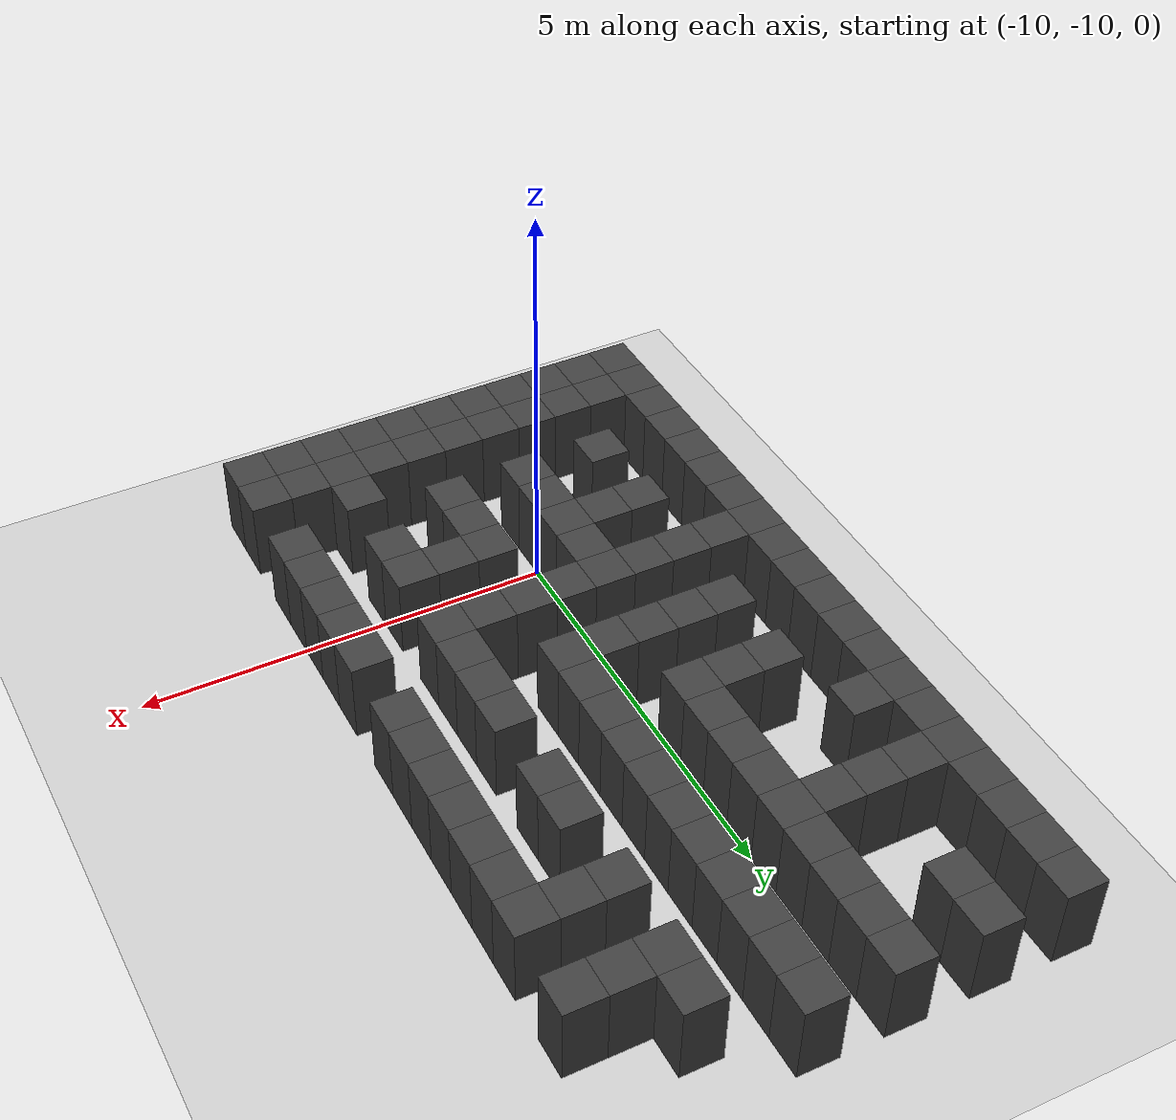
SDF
<sdf version="1.7">
 <world name="map_18332">
  <model name="ground_plane">
   <static>true</static>
   <link name="link">
    <collision name="collision">
     <geometry><plane><normal>0 0 1</normal><size>200 200</size></plane></geometry>
    </collision>
    <visual name="visual">
     <geometry><plane><normal>0 0 1</normal><size>200 200</size></plane></geometry>
     <material><ambient>0.8 0.8 0.8 1</ambient><diffuse>0.8 0.8 0.8 1</diffuse></material>
    </visual>
   </link>
  </model>
  <model name="maze_environment">
   <static>true</static>
   <link name="wall_757">
    <pose>-12.250 -2.750 0.500 0 0 0</pose>
    <collision name="col"><geometry><box><size>0.5 0.5 1.0</size></box></geometry></collision>
    <visual name="vis">
     <geometry><box><size>0.5 0.5 1.0</size></box></geometry>
     <material><ambient>0.15 0.15 0.15 1</ambient><diffuse>0.25 0.25 0.25 1</diffuse></material>
    </visual>
   </link>
   <link name="wall_758">
    <pose>-11.250 -2.750 0.500 0 0 0</pose>
    <collision name="col"><geometry><box><size>0.5 0.5 1.0</size></box></geometry></collision>
    <visual name="vis">
     <geometry><box><size>0.5 0.5 1.0</size></box></geometry>
     <material><ambient>0.15 0.15 0.15 1</ambient><diffuse>0.25 0.25 0.25 1</diffuse></material>
    </visual>
   </link>
   <link name="wall_759">
    <pose>-10.250 -2.750 0.500 0 0 0</pose>
    <collision name="col"><geometry><box><size>0.5 0.5 1.0</size></box></geometry></collision>
    <visual name="vis">
     <geometry><box><size>0.5 0.5 1.0</size></box></geometry>
     <material><ambient>0.15 0.15 0.15 1</ambient><diffuse>0.25 0.25 0.25 1</diffuse></material>
    </visual>
   </link>
   <link name="wall_760">
    <pose>-9.250 -2.750 0.500 0 0 0</pose>
    <collision name="col"><geometry><box><size>0.5 0.5 1.0</size></box></geometry></collision>
    <visual name="vis">
     <geometry><box><size>0.5 0.5 1.0</size></box></geometry>
     <material><ambient>0.15 0.15 0.15 1</ambient><diffuse>0.25 0.25 0.25 1</diffuse></material>
    </visual>
   </link>
   <link name="wall_791">
    <pose>-12.250 -3.250 0.500 0 0 0</pose>
    <collision name="col"><geometry><box><size>0.5 0.5 1.0</size></box></geometry></collision>
    <visual name="vis">
     <geometry><box><size>0.5 0.5 1.0</size></box></geometry>
     <material><ambient>0.15 0.15 0.15 1</ambient><diffuse>0.25 0.25 0.25 1</diffuse></material>
    </visual>
   </link>
   <link name="wall_792">
    <pose>-11.250 -3.250 0.500 0 0 0</pose>
    <collision name="col"><geometry><box><size>0.5 0.5 1.0</size></box></geometry></collision>
    <visual name="vis">
     <geometry><box><size>0.5 0.5 1.0</size></box></geometry>
     <material><ambient>0.15 0.15 0.15 1</ambient><diffuse>0.25 0.25 0.25 1</diffuse></material>
    </visual>
   </link>
   <link name="wall_793">
    <pose>-10.250 -3.250 0.500 0 0 0</pose>
    <collision name="col"><geometry><box><size>0.5 0.5 1.0</size></box></geometry></collision>
    <visual name="vis">
     <geometry><box><size>0.5 0.5 1.0</size></box></geometry>
     <material><ambient>0.15 0.15 0.15 1</ambient><diffuse>0.25 0.25 0.25 1</diffuse></material>
    </visual>
   </link>
   <link name="wall_794">
    <pose>-9.250 -3.250 0.500 0 0 0</pose>
    <collision name="col"><geometry><box><size>0.5 0.5 1.0</size></box></geometry></collision>
    <visual name="vis">
     <geometry><box><size>0.5 0.5 1.0</size></box></geometry>
     <material><ambient>0.15 0.15 0.15 1</ambient><diffuse>0.25 0.25 0.25 1</diffuse></material>
    </visual>
   </link>
   <link name="wall_795">
    <pose>-8.250 -3.250 0.500 0 0 0</pose>
    <collision name="col"><geometry><box><size>0.5 0.5 1.0</size></box></geometry></collision>
    <visual name="vis">
     <geometry><box><size>0.5 0.5 1.0</size></box></geometry>
     <material><ambient>0.15 0.15 0.15 1</ambient><diffuse>0.25 0.25 0.25 1</diffuse></material>
    </visual>
   </link>
   <link name="wall_808">
    <pose>-12.250 -3.750 0.500 0 0 0</pose>
    <collision name="col"><geometry><box><size>0.5 0.5 1.0</size></box></geometry></collision>
    <visual name="vis">
     <geometry><box><size>0.5 0.5 1.0</size></box></geometry>
     <material><ambient>0.15 0.15 0.15 1</ambient><diffuse>0.25 0.25 0.25 1</diffuse></material>
    </visual>
   </link>
   <link name="wall_809">
    <pose>-10.250 -3.750 0.500 0 0 0</pose>
    <collision name="col"><geometry><box><size>0.5 0.5 1.0</size></box></geometry></collision>
    <visual name="vis">
     <geometry><box><size>0.5 0.5 1.0</size></box></geometry>
     <material><ambient>0.15 0.15 0.15 1</ambient><diffuse>0.25 0.25 0.25 1</diffuse></material>
    </visual>
   </link>
   <link name="wall_810">
    <pose>-9.250 -3.750 0.500 0 0 0</pose>
    <collision name="col"><geometry><box><size>0.5 0.5 1.0</size></box></geometry></collision>
    <visual name="vis">
     <geometry><box><size>0.5 0.5 1.0</size></box></geometry>
     <material><ambient>0.15 0.15 0.15 1</ambient><diffuse>0.25 0.25 0.25 1</diffuse></material>
    </visual>
   </link>
   <link name="wall_811">
    <pose>-8.250 -3.750 0.500 0 0 0</pose>
    <collision name="col"><geometry><box><size>0.5 0.5 1.0</size></box></geometry></collision>
    <visual name="vis">
     <geometry><box><size>0.5 0.5 1.0</size></box></geometry>
     <material><ambient>0.15 0.15 0.15 1</ambient><diffuse>0.25 0.25 0.25 1</diffuse></material>
    </visual>
   </link>
   <link name="wall_812">
    <pose>-7.750 -3.750 0.500 0 0 0</pose>
    <collision name="col"><geometry><box><size>0.5 0.5 1.0</size></box></geometry></collision>
    <visual name="vis">
     <geometry><box><size>0.5 0.5 1.0</size></box></geometry>
     <material><ambient>0.15 0.15 0.15 1</ambient><diffuse>0.25 0.25 0.25 1</diffuse></material>
    </visual>
   </link>
   <link name="wall_813">
    <pose>-7.250 -3.750 0.500 0 0 0</pose>
    <collision name="col"><geometry><box><size>0.5 0.5 1.0</size></box></geometry></collision>
    <visual name="vis">
     <geometry><box><size>0.5 0.5 1.0</size></box></geometry>
     <material><ambient>0.15 0.15 0.15 1</ambient><diffuse>0.25 0.25 0.25 1</diffuse></material>
    </visual>
   </link>
   <link name="wall_841">
    <pose>-12.250 -4.250 0.500 0 0 0</pose>
    <collision name="col"><geometry><box><size>0.5 0.5 1.0</size></box></geometry></collision>
    <visual name="vis">
     <geometry><box><size>0.5 0.5 1.0</size></box></geometry>
     <material><ambient>0.15 0.15 0.15 1</ambient><diffuse>0.25 0.25 0.25 1</diffuse></material>
    </visual>
   </link>
   <link name="wall_842">
    <pose>-10.250 -4.250 0.500 0 0 0</pose>
    <collision name="col"><geometry><box><size>0.5 0.5 1.0</size></box></geometry></collision>
    <visual name="vis">
     <geometry><box><size>0.5 0.5 1.0</size></box></geometry>
     <material><ambient>0.15 0.15 0.15 1</ambient><diffuse>0.25 0.25 0.25 1</diffuse></material>
    </visual>
   </link>
   <link name="wall_843">
    <pose>-9.250 -4.250 0.500 0 0 0</pose>
    <collision name="col"><geometry><box><size>0.5 0.5 1.0</size></box></geometry></collision>
    <visual name="vis">
     <geometry><box><size>0.5 0.5 1.0</size></box></geometry>
     <material><ambient>0.15 0.15 0.15 1</ambient><diffuse>0.25 0.25 0.25 1</diffuse></material>
    </visual>
   </link>
   <link name="wall_856">
    <pose>-12.250 -4.750 0.500 0 0 0</pose>
    <collision name="col"><geometry><box><size>0.5 0.5 1.0</size></box></geometry></collision>
    <visual name="vis">
     <geometry><box><size>0.5 0.5 1.0</size></box></geometry>
     <material><ambient>0.15 0.15 0.15 1</ambient><diffuse>0.25 0.25 0.25 1</diffuse></material>
    </visual>
   </link>
   <link name="wall_857">
    <pose>-11.750 -4.750 0.500 0 0 0</pose>
    <collision name="col"><geometry><box><size>0.5 0.5 1.0</size></box></geometry></collision>
    <visual name="vis">
     <geometry><box><size>0.5 0.5 1.0</size></box></geometry>
     <material><ambient>0.15 0.15 0.15 1</ambient><diffuse>0.25 0.25 0.25 1</diffuse></material>
    </visual>
   </link>
   <link name="wall_858">
    <pose>-11.250 -4.750 0.500 0 0 0</pose>
    <collision name="col"><geometry><box><size>0.5 0.5 1.0</size></box></geometry></collision>
    <visual name="vis">
     <geometry><box><size>0.5 0.5 1.0</size></box></geometry>
     <material><ambient>0.15 0.15 0.15 1</ambient><diffuse>0.25 0.25 0.25 1</diffuse></material>
    </visual>
   </link>
   <link name="wall_859">
    <pose>-10.750 -4.750 0.500 0 0 0</pose>
    <collision name="col"><geometry><box><size>0.5 0.5 1.0</size></box></geometry></collision>
    <visual name="vis">
     <geometry><box><size>0.5 0.5 1.0</size></box></geometry>
     <material><ambient>0.15 0.15 0.15 1</ambient><diffuse>0.25 0.25 0.25 1</diffuse></material>
    </visual>
   </link>
   <link name="wall_860">
    <pose>-10.250 -4.750 0.500 0 0 0</pose>
    <collision name="col"><geometry><box><size>0.5 0.5 1.0</size></box></geometry></collision>
    <visual name="vis">
     <geometry><box><size>0.5 0.5 1.0</size></box></geometry>
     <material><ambient>0.15 0.15 0.15 1</ambient><diffuse>0.25 0.25 0.25 1</diffuse></material>
    </visual>
   </link>
   <link name="wall_861">
    <pose>-9.250 -4.750 0.500 0 0 0</pose>
    <collision name="col"><geometry><box><size>0.5 0.5 1.0</size></box></geometry></collision>
    <visual name="vis">
     <geometry><box><size>0.5 0.5 1.0</size></box></geometry>
     <material><ambient>0.15 0.15 0.15 1</ambient><diffuse>0.25 0.25 0.25 1</diffuse></material>
    </visual>
   </link>
   <link name="wall_862">
    <pose>-8.250 -4.750 0.500 0 0 0</pose>
    <collision name="col"><geometry><box><size>0.5 0.5 1.0</size></box></geometry></collision>
    <visual name="vis">
     <geometry><box><size>0.5 0.5 1.0</size></box></geometry>
     <material><ambient>0.15 0.15 0.15 1</ambient><diffuse>0.25 0.25 0.25 1</diffuse></material>
    </visual>
   </link>
   <link name="wall_863">
    <pose>-7.750 -4.750 0.500 0 0 0</pose>
    <collision name="col"><geometry><box><size>0.5 0.5 1.0</size></box></geometry></collision>
    <visual name="vis">
     <geometry><box><size>0.5 0.5 1.0</size></box></geometry>
     <material><ambient>0.15 0.15 0.15 1</ambient><diffuse>0.25 0.25 0.25 1</diffuse></material>
    </visual>
   </link>
   <link name="wall_864">
    <pose>-7.250 -4.750 0.500 0 0 0</pose>
    <collision name="col"><geometry><box><size>0.5 0.5 1.0</size></box></geometry></collision>
    <visual name="vis">
     <geometry><box><size>0.5 0.5 1.0</size></box></geometry>
     <material><ambient>0.15 0.15 0.15 1</ambient><diffuse>0.25 0.25 0.25 1</diffuse></material>
    </visual>
   </link>
   <link name="wall_890">
    <pose>-12.250 -5.250 0.500 0 0 0</pose>
    <collision name="col"><geometry><box><size>0.5 0.5 1.0</size></box></geometry></collision>
    <visual name="vis">
     <geometry><box><size>0.5 0.5 1.0</size></box></geometry>
     <material><ambient>0.15 0.15 0.15 1</ambient><diffuse>0.25 0.25 0.25 1</diffuse></material>
    </visual>
   </link>
   <link name="wall_891">
    <pose>-10.250 -5.250 0.500 0 0 0</pose>
    <collision name="col"><geometry><box><size>0.5 0.5 1.0</size></box></geometry></collision>
    <visual name="vis">
     <geometry><box><size>0.5 0.5 1.0</size></box></geometry>
     <material><ambient>0.15 0.15 0.15 1</ambient><diffuse>0.25 0.25 0.25 1</diffuse></material>
    </visual>
   </link>
   <link name="wall_892">
    <pose>-9.250 -5.250 0.500 0 0 0</pose>
    <collision name="col"><geometry><box><size>0.5 0.5 1.0</size></box></geometry></collision>
    <visual name="vis">
     <geometry><box><size>0.5 0.5 1.0</size></box></geometry>
     <material><ambient>0.15 0.15 0.15 1</ambient><diffuse>0.25 0.25 0.25 1</diffuse></material>
    </visual>
   </link>
   <link name="wall_893">
    <pose>-7.250 -5.250 0.500 0 0 0</pose>
    <collision name="col"><geometry><box><size>0.5 0.5 1.0</size></box></geometry></collision>
    <visual name="vis">
     <geometry><box><size>0.5 0.5 1.0</size></box></geometry>
     <material><ambient>0.15 0.15 0.15 1</ambient><diffuse>0.25 0.25 0.25 1</diffuse></material>
    </visual>
   </link>
   <link name="wall_905">
    <pose>-12.250 -5.750 0.500 0 0 0</pose>
    <collision name="col"><geometry><box><size>0.5 0.5 1.0</size></box></geometry></collision>
    <visual name="vis">
     <geometry><box><size>0.5 0.5 1.0</size></box></geometry>
     <material><ambient>0.15 0.15 0.15 1</ambient><diffuse>0.25 0.25 0.25 1</diffuse></material>
    </visual>
   </link>
   <link name="wall_906">
    <pose>-11.750 -5.750 0.500 0 0 0</pose>
    <collision name="col"><geometry><box><size>0.5 0.5 1.0</size></box></geometry></collision>
    <visual name="vis">
     <geometry><box><size>0.5 0.5 1.0</size></box></geometry>
     <material><ambient>0.15 0.15 0.15 1</ambient><diffuse>0.25 0.25 0.25 1</diffuse></material>
    </visual>
   </link>
   <link name="wall_907">
    <pose>-10.250 -5.750 0.500 0 0 0</pose>
    <collision name="col"><geometry><box><size>0.5 0.5 1.0</size></box></geometry></collision>
    <visual name="vis">
     <geometry><box><size>0.5 0.5 1.0</size></box></geometry>
     <material><ambient>0.15 0.15 0.15 1</ambient><diffuse>0.25 0.25 0.25 1</diffuse></material>
    </visual>
   </link>
   <link name="wall_908">
    <pose>-9.250 -5.750 0.500 0 0 0</pose>
    <collision name="col"><geometry><box><size>0.5 0.5 1.0</size></box></geometry></collision>
    <visual name="vis">
     <geometry><box><size>0.5 0.5 1.0</size></box></geometry>
     <material><ambient>0.15 0.15 0.15 1</ambient><diffuse>0.25 0.25 0.25 1</diffuse></material>
    </visual>
   </link>
   <link name="wall_909">
    <pose>-8.250 -5.750 0.500 0 0 0</pose>
    <collision name="col"><geometry><box><size>0.5 0.5 1.0</size></box></geometry></collision>
    <visual name="vis">
     <geometry><box><size>0.5 0.5 1.0</size></box></geometry>
     <material><ambient>0.15 0.15 0.15 1</ambient><diffuse>0.25 0.25 0.25 1</diffuse></material>
    </visual>
   </link>
   <link name="wall_910">
    <pose>-7.250 -5.750 0.500 0 0 0</pose>
    <collision name="col"><geometry><box><size>0.5 0.5 1.0</size></box></geometry></collision>
    <visual name="vis">
     <geometry><box><size>0.5 0.5 1.0</size></box></geometry>
     <material><ambient>0.15 0.15 0.15 1</ambient><diffuse>0.25 0.25 0.25 1</diffuse></material>
    </visual>
   </link>
   <link name="wall_941">
    <pose>-12.250 -6.250 0.500 0 0 0</pose>
    <collision name="col"><geometry><box><size>0.5 0.5 1.0</size></box></geometry></collision>
    <visual name="vis">
     <geometry><box><size>0.5 0.5 1.0</size></box></geometry>
     <material><ambient>0.15 0.15 0.15 1</ambient><diffuse>0.25 0.25 0.25 1</diffuse></material>
    </visual>
   </link>
   <link name="wall_942">
    <pose>-10.250 -6.250 0.500 0 0 0</pose>
    <collision name="col"><geometry><box><size>0.5 0.5 1.0</size></box></geometry></collision>
    <visual name="vis">
     <geometry><box><size>0.5 0.5 1.0</size></box></geometry>
     <material><ambient>0.15 0.15 0.15 1</ambient><diffuse>0.25 0.25 0.25 1</diffuse></material>
    </visual>
   </link>
   <link name="wall_943">
    <pose>-9.250 -6.250 0.500 0 0 0</pose>
    <collision name="col"><geometry><box><size>0.5 0.5 1.0</size></box></geometry></collision>
    <visual name="vis">
     <geometry><box><size>0.5 0.5 1.0</size></box></geometry>
     <material><ambient>0.15 0.15 0.15 1</ambient><diffuse>0.25 0.25 0.25 1</diffuse></material>
    </visual>
   </link>
   <link name="wall_944">
    <pose>-8.250 -6.250 0.500 0 0 0</pose>
    <collision name="col"><geometry><box><size>0.5 0.5 1.0</size></box></geometry></collision>
    <visual name="vis">
     <geometry><box><size>0.5 0.5 1.0</size></box></geometry>
     <material><ambient>0.15 0.15 0.15 1</ambient><diffuse>0.25 0.25 0.25 1</diffuse></material>
    </visual>
   </link>
   <link name="wall_945">
    <pose>-7.250 -6.250 0.500 0 0 0</pose>
    <collision name="col"><geometry><box><size>0.5 0.5 1.0</size></box></geometry></collision>
    <visual name="vis">
     <geometry><box><size>0.5 0.5 1.0</size></box></geometry>
     <material><ambient>0.15 0.15 0.15 1</ambient><diffuse>0.25 0.25 0.25 1</diffuse></material>
    </visual>
   </link>
   <link name="wall_955">
    <pose>-12.250 -6.750 0.500 0 0 0</pose>
    <collision name="col"><geometry><box><size>0.5 0.5 1.0</size></box></geometry></collision>
    <visual name="vis">
     <geometry><box><size>0.5 0.5 1.0</size></box></geometry>
     <material><ambient>0.15 0.15 0.15 1</ambient><diffuse>0.25 0.25 0.25 1</diffuse></material>
    </visual>
   </link>
   <link name="wall_956">
    <pose>-11.250 -6.750 0.500 0 0 0</pose>
    <collision name="col"><geometry><box><size>0.5 0.5 1.0</size></box></geometry></collision>
    <visual name="vis">
     <geometry><box><size>0.5 0.5 1.0</size></box></geometry>
     <material><ambient>0.15 0.15 0.15 1</ambient><diffuse>0.25 0.25 0.25 1</diffuse></material>
    </visual>
   </link>
   <link name="wall_957">
    <pose>-10.750 -6.750 0.500 0 0 0</pose>
    <collision name="col"><geometry><box><size>0.5 0.5 1.0</size></box></geometry></collision>
    <visual name="vis">
     <geometry><box><size>0.5 0.5 1.0</size></box></geometry>
     <material><ambient>0.15 0.15 0.15 1</ambient><diffuse>0.25 0.25 0.25 1</diffuse></material>
    </visual>
   </link>
   <link name="wall_958">
    <pose>-10.250 -6.750 0.500 0 0 0</pose>
    <collision name="col"><geometry><box><size>0.5 0.5 1.0</size></box></geometry></collision>
    <visual name="vis">
     <geometry><box><size>0.5 0.5 1.0</size></box></geometry>
     <material><ambient>0.15 0.15 0.15 1</ambient><diffuse>0.25 0.25 0.25 1</diffuse></material>
    </visual>
   </link>
   <link name="wall_959">
    <pose>-9.250 -6.750 0.500 0 0 0</pose>
    <collision name="col"><geometry><box><size>0.5 0.5 1.0</size></box></geometry></collision>
    <visual name="vis">
     <geometry><box><size>0.5 0.5 1.0</size></box></geometry>
     <material><ambient>0.15 0.15 0.15 1</ambient><diffuse>0.25 0.25 0.25 1</diffuse></material>
    </visual>
   </link>
   <link name="wall_960">
    <pose>-7.250 -6.750 0.500 0 0 0</pose>
    <collision name="col"><geometry><box><size>0.5 0.5 1.0</size></box></geometry></collision>
    <visual name="vis">
     <geometry><box><size>0.5 0.5 1.0</size></box></geometry>
     <material><ambient>0.15 0.15 0.15 1</ambient><diffuse>0.25 0.25 0.25 1</diffuse></material>
    </visual>
   </link>
   <link name="wall_991">
    <pose>-12.250 -7.250 0.500 0 0 0</pose>
    <collision name="col"><geometry><box><size>0.5 0.5 1.0</size></box></geometry></collision>
    <visual name="vis">
     <geometry><box><size>0.5 0.5 1.0</size></box></geometry>
     <material><ambient>0.15 0.15 0.15 1</ambient><diffuse>0.25 0.25 0.25 1</diffuse></material>
    </visual>
   </link>
   <link name="wall_992">
    <pose>-9.250 -7.250 0.500 0 0 0</pose>
    <collision name="col"><geometry><box><size>0.5 0.5 1.0</size></box></geometry></collision>
    <visual name="vis">
     <geometry><box><size>0.5 0.5 1.0</size></box></geometry>
     <material><ambient>0.15 0.15 0.15 1</ambient><diffuse>0.25 0.25 0.25 1</diffuse></material>
    </visual>
   </link>
   <link name="wall_993">
    <pose>-8.250 -7.250 0.500 0 0 0</pose>
    <collision name="col"><geometry><box><size>0.5 0.5 1.0</size></box></geometry></collision>
    <visual name="vis">
     <geometry><box><size>0.5 0.5 1.0</size></box></geometry>
     <material><ambient>0.15 0.15 0.15 1</ambient><diffuse>0.25 0.25 0.25 1</diffuse></material>
    </visual>
   </link>
   <link name="wall_994">
    <pose>-7.250 -7.250 0.500 0 0 0</pose>
    <collision name="col"><geometry><box><size>0.5 0.5 1.0</size></box></geometry></collision>
    <visual name="vis">
     <geometry><box><size>0.5 0.5 1.0</size></box></geometry>
     <material><ambient>0.15 0.15 0.15 1</ambient><diffuse>0.25 0.25 0.25 1</diffuse></material>
    </visual>
   </link>
   <link name="wall_1005">
    <pose>-12.250 -7.750 0.500 0 0 0</pose>
    <collision name="col"><geometry><box><size>0.5 0.5 1.0</size></box></geometry></collision>
    <visual name="vis">
     <geometry><box><size>0.5 0.5 1.0</size></box></geometry>
     <material><ambient>0.15 0.15 0.15 1</ambient><diffuse>0.25 0.25 0.25 1</diffuse></material>
    </visual>
   </link>
   <link name="wall_1006">
    <pose>-11.250 -7.750 0.500 0 0 0</pose>
    <collision name="col"><geometry><box><size>0.5 0.5 1.0</size></box></geometry></collision>
    <visual name="vis">
     <geometry><box><size>0.5 0.5 1.0</size></box></geometry>
     <material><ambient>0.15 0.15 0.15 1</ambient><diffuse>0.25 0.25 0.25 1</diffuse></material>
    </visual>
   </link>
   <link name="wall_1007">
    <pose>-10.750 -7.750 0.500 0 0 0</pose>
    <collision name="col"><geometry><box><size>0.5 0.5 1.0</size></box></geometry></collision>
    <visual name="vis">
     <geometry><box><size>0.5 0.5 1.0</size></box></geometry>
     <material><ambient>0.15 0.15 0.15 1</ambient><diffuse>0.25 0.25 0.25 1</diffuse></material>
    </visual>
   </link>
   <link name="wall_1008">
    <pose>-10.250 -7.750 0.500 0 0 0</pose>
    <collision name="col"><geometry><box><size>0.5 0.5 1.0</size></box></geometry></collision>
    <visual name="vis">
     <geometry><box><size>0.5 0.5 1.0</size></box></geometry>
     <material><ambient>0.15 0.15 0.15 1</ambient><diffuse>0.25 0.25 0.25 1</diffuse></material>
    </visual>
   </link>
   <link name="wall_1009">
    <pose>-9.750 -7.750 0.500 0 0 0</pose>
    <collision name="col"><geometry><box><size>0.5 0.5 1.0</size></box></geometry></collision>
    <visual name="vis">
     <geometry><box><size>0.5 0.5 1.0</size></box></geometry>
     <material><ambient>0.15 0.15 0.15 1</ambient><diffuse>0.25 0.25 0.25 1</diffuse></material>
    </visual>
   </link>
   <link name="wall_1010">
    <pose>-9.250 -7.750 0.500 0 0 0</pose>
    <collision name="col"><geometry><box><size>0.5 0.5 1.0</size></box></geometry></collision>
    <visual name="vis">
     <geometry><box><size>0.5 0.5 1.0</size></box></geometry>
     <material><ambient>0.15 0.15 0.15 1</ambient><diffuse>0.25 0.25 0.25 1</diffuse></material>
    </visual>
   </link>
   <link name="wall_1011">
    <pose>-8.250 -7.750 0.500 0 0 0</pose>
    <collision name="col"><geometry><box><size>0.5 0.5 1.0</size></box></geometry></collision>
    <visual name="vis">
     <geometry><box><size>0.5 0.5 1.0</size></box></geometry>
     <material><ambient>0.15 0.15 0.15 1</ambient><diffuse>0.25 0.25 0.25 1</diffuse></material>
    </visual>
   </link>
   <link name="wall_1012">
    <pose>-7.250 -7.750 0.500 0 0 0</pose>
    <collision name="col"><geometry><box><size>0.5 0.5 1.0</size></box></geometry></collision>
    <visual name="vis">
     <geometry><box><size>0.5 0.5 1.0</size></box></geometry>
     <material><ambient>0.15 0.15 0.15 1</ambient><diffuse>0.25 0.25 0.25 1</diffuse></material>
    </visual>
   </link>
   <link name="wall_1037">
    <pose>-12.250 -8.250 0.500 0 0 0</pose>
    <collision name="col"><geometry><box><size>0.5 0.5 1.0</size></box></geometry></collision>
    <visual name="vis">
     <geometry><box><size>0.5 0.5 1.0</size></box></geometry>
     <material><ambient>0.15 0.15 0.15 1</ambient><diffuse>0.25 0.25 0.25 1</diffuse></material>
    </visual>
   </link>
   <link name="wall_1038">
    <pose>-8.250 -8.250 0.500 0 0 0</pose>
    <collision name="col"><geometry><box><size>0.5 0.5 1.0</size></box></geometry></collision>
    <visual name="vis">
     <geometry><box><size>0.5 0.5 1.0</size></box></geometry>
     <material><ambient>0.15 0.15 0.15 1</ambient><diffuse>0.25 0.25 0.25 1</diffuse></material>
    </visual>
   </link>
   <link name="wall_1053">
    <pose>-12.250 -8.750 0.500 0 0 0</pose>
    <collision name="col"><geometry><box><size>0.5 0.5 1.0</size></box></geometry></collision>
    <visual name="vis">
     <geometry><box><size>0.5 0.5 1.0</size></box></geometry>
     <material><ambient>0.15 0.15 0.15 1</ambient><diffuse>0.25 0.25 0.25 1</diffuse></material>
    </visual>
   </link>
   <link name="wall_1054">
    <pose>-11.750 -8.750 0.500 0 0 0</pose>
    <collision name="col"><geometry><box><size>0.5 0.5 1.0</size></box></geometry></collision>
    <visual name="vis">
     <geometry><box><size>0.5 0.5 1.0</size></box></geometry>
     <material><ambient>0.15 0.15 0.15 1</ambient><diffuse>0.25 0.25 0.25 1</diffuse></material>
    </visual>
   </link>
   <link name="wall_1055">
    <pose>-11.250 -8.750 0.500 0 0 0</pose>
    <collision name="col"><geometry><box><size>0.5 0.5 1.0</size></box></geometry></collision>
    <visual name="vis">
     <geometry><box><size>0.5 0.5 1.0</size></box></geometry>
     <material><ambient>0.15 0.15 0.15 1</ambient><diffuse>0.25 0.25 0.25 1</diffuse></material>
    </visual>
   </link>
   <link name="wall_1056">
    <pose>-10.750 -8.750 0.500 0 0 0</pose>
    <collision name="col"><geometry><box><size>0.5 0.5 1.0</size></box></geometry></collision>
    <visual name="vis">
     <geometry><box><size>0.5 0.5 1.0</size></box></geometry>
     <material><ambient>0.15 0.15 0.15 1</ambient><diffuse>0.25 0.25 0.25 1</diffuse></material>
    </visual>
   </link>
   <link name="wall_1057">
    <pose>-10.250 -8.750 0.500 0 0 0</pose>
    <collision name="col"><geometry><box><size>0.5 0.5 1.0</size></box></geometry></collision>
    <visual name="vis">
     <geometry><box><size>0.5 0.5 1.0</size></box></geometry>
     <material><ambient>0.15 0.15 0.15 1</ambient><diffuse>0.25 0.25 0.25 1</diffuse></material>
    </visual>
   </link>
   <link name="wall_1058">
    <pose>-9.750 -8.750 0.500 0 0 0</pose>
    <collision name="col"><geometry><box><size>0.5 0.5 1.0</size></box></geometry></collision>
    <visual name="vis">
     <geometry><box><size>0.5 0.5 1.0</size></box></geometry>
     <material><ambient>0.15 0.15 0.15 1</ambient><diffuse>0.25 0.25 0.25 1</diffuse></material>
    </visual>
   </link>
   <link name="wall_1059">
    <pose>-9.250 -8.750 0.500 0 0 0</pose>
    <collision name="col"><geometry><box><size>0.5 0.5 1.0</size></box></geometry></collision>
    <visual name="vis">
     <geometry><box><size>0.5 0.5 1.0</size></box></geometry>
     <material><ambient>0.15 0.15 0.15 1</ambient><diffuse>0.25 0.25 0.25 1</diffuse></material>
    </visual>
   </link>
   <link name="wall_1060">
    <pose>-8.750 -8.750 0.500 0 0 0</pose>
    <collision name="col"><geometry><box><size>0.5 0.5 1.0</size></box></geometry></collision>
    <visual name="vis">
     <geometry><box><size>0.5 0.5 1.0</size></box></geometry>
     <material><ambient>0.15 0.15 0.15 1</ambient><diffuse>0.25 0.25 0.25 1</diffuse></material>
    </visual>
   </link>
   <link name="wall_1061">
    <pose>-8.250 -8.750 0.500 0 0 0</pose>
    <collision name="col"><geometry><box><size>0.5 0.5 1.0</size></box></geometry></collision>
    <visual name="vis">
     <geometry><box><size>0.5 0.5 1.0</size></box></geometry>
     <material><ambient>0.15 0.15 0.15 1</ambient><diffuse>0.25 0.25 0.25 1</diffuse></material>
    </visual>
   </link>
   <link name="wall_1062">
    <pose>-7.250 -8.750 0.500 0 0 0</pose>
    <collision name="col"><geometry><box><size>0.5 0.5 1.0</size></box></geometry></collision>
    <visual name="vis">
     <geometry><box><size>0.5 0.5 1.0</size></box></geometry>
     <material><ambient>0.15 0.15 0.15 1</ambient><diffuse>0.25 0.25 0.25 1</diffuse></material>
    </visual>
   </link>
   <link name="wall_1090">
    <pose>-12.250 -9.250 0.500 0 0 0</pose>
    <collision name="col"><geometry><box><size>0.5 0.5 1.0</size></box></geometry></collision>
    <visual name="vis">
     <geometry><box><size>0.5 0.5 1.0</size></box></geometry>
     <material><ambient>0.15 0.15 0.15 1</ambient><diffuse>0.25 0.25 0.25 1</diffuse></material>
    </visual>
   </link>
   <link name="wall_1091">
    <pose>-10.250 -9.250 0.500 0 0 0</pose>
    <collision name="col"><geometry><box><size>0.5 0.5 1.0</size></box></geometry></collision>
    <visual name="vis">
     <geometry><box><size>0.5 0.5 1.0</size></box></geometry>
     <material><ambient>0.15 0.15 0.15 1</ambient><diffuse>0.25 0.25 0.25 1</diffuse></material>
    </visual>
   </link>
   <link name="wall_1092">
    <pose>-7.250 -9.250 0.500 0 0 0</pose>
    <collision name="col"><geometry><box><size>0.5 0.5 1.0</size></box></geometry></collision>
    <visual name="vis">
     <geometry><box><size>0.5 0.5 1.0</size></box></geometry>
     <material><ambient>0.15 0.15 0.15 1</ambient><diffuse>0.25 0.25 0.25 1</diffuse></material>
    </visual>
   </link>
   <link name="wall_1105">
    <pose>-12.250 -9.750 0.500 0 0 0</pose>
    <collision name="col"><geometry><box><size>0.5 0.5 1.0</size></box></geometry></collision>
    <visual name="vis">
     <geometry><box><size>0.5 0.5 1.0</size></box></geometry>
     <material><ambient>0.15 0.15 0.15 1</ambient><diffuse>0.25 0.25 0.25 1</diffuse></material>
    </visual>
   </link>
   <link name="wall_1106">
    <pose>-11.250 -9.750 0.500 0 0 0</pose>
    <collision name="col"><geometry><box><size>0.5 0.5 1.0</size></box></geometry></collision>
    <visual name="vis">
     <geometry><box><size>0.5 0.5 1.0</size></box></geometry>
     <material><ambient>0.15 0.15 0.15 1</ambient><diffuse>0.25 0.25 0.25 1</diffuse></material>
    </visual>
   </link>
   <link name="wall_1107">
    <pose>-10.750 -9.750 0.500 0 0 0</pose>
    <collision name="col"><geometry><box><size>0.5 0.5 1.0</size></box></geometry></collision>
    <visual name="vis">
     <geometry><box><size>0.5 0.5 1.0</size></box></geometry>
     <material><ambient>0.15 0.15 0.15 1</ambient><diffuse>0.25 0.25 0.25 1</diffuse></material>
    </visual>
   </link>
   <link name="wall_1108">
    <pose>-10.250 -9.750 0.500 0 0 0</pose>
    <collision name="col"><geometry><box><size>0.5 0.5 1.0</size></box></geometry></collision>
    <visual name="vis">
     <geometry><box><size>0.5 0.5 1.0</size></box></geometry>
     <material><ambient>0.15 0.15 0.15 1</ambient><diffuse>0.25 0.25 0.25 1</diffuse></material>
    </visual>
   </link>
   <link name="wall_1109">
    <pose>-9.250 -9.750 0.500 0 0 0</pose>
    <collision name="col"><geometry><box><size>0.5 0.5 1.0</size></box></geometry></collision>
    <visual name="vis">
     <geometry><box><size>0.5 0.5 1.0</size></box></geometry>
     <material><ambient>0.15 0.15 0.15 1</ambient><diffuse>0.25 0.25 0.25 1</diffuse></material>
    </visual>
   </link>
   <link name="wall_1110">
    <pose>-8.750 -9.750 0.500 0 0 0</pose>
    <collision name="col"><geometry><box><size>0.5 0.5 1.0</size></box></geometry></collision>
    <visual name="vis">
     <geometry><box><size>0.5 0.5 1.0</size></box></geometry>
     <material><ambient>0.15 0.15 0.15 1</ambient><diffuse>0.25 0.25 0.25 1</diffuse></material>
    </visual>
   </link>
   <link name="wall_1111">
    <pose>-8.250 -9.750 0.500 0 0 0</pose>
    <collision name="col"><geometry><box><size>0.5 0.5 1.0</size></box></geometry></collision>
    <visual name="vis">
     <geometry><box><size>0.5 0.5 1.0</size></box></geometry>
     <material><ambient>0.15 0.15 0.15 1</ambient><diffuse>0.25 0.25 0.25 1</diffuse></material>
    </visual>
   </link>
   <link name="wall_1112">
    <pose>-7.250 -9.750 0.500 0 0 0</pose>
    <collision name="col"><geometry><box><size>0.5 0.5 1.0</size></box></geometry></collision>
    <visual name="vis">
     <geometry><box><size>0.5 0.5 1.0</size></box></geometry>
     <material><ambient>0.15 0.15 0.15 1</ambient><diffuse>0.25 0.25 0.25 1</diffuse></material>
    </visual>
   </link>
   <link name="wall_1142">
    <pose>-12.250 -10.250 0.500 0 0 0</pose>
    <collision name="col"><geometry><box><size>0.5 0.5 1.0</size></box></geometry></collision>
    <visual name="vis">
     <geometry><box><size>0.5 0.5 1.0</size></box></geometry>
     <material><ambient>0.15 0.15 0.15 1</ambient><diffuse>0.25 0.25 0.25 1</diffuse></material>
    </visual>
   </link>
   <link name="wall_1143">
    <pose>-10.250 -10.250 0.500 0 0 0</pose>
    <collision name="col"><geometry><box><size>0.5 0.5 1.0</size></box></geometry></collision>
    <visual name="vis">
     <geometry><box><size>0.5 0.5 1.0</size></box></geometry>
     <material><ambient>0.15 0.15 0.15 1</ambient><diffuse>0.25 0.25 0.25 1</diffuse></material>
    </visual>
   </link>
   <link name="wall_1144">
    <pose>-9.250 -10.250 0.500 0 0 0</pose>
    <collision name="col"><geometry><box><size>0.5 0.5 1.0</size></box></geometry></collision>
    <visual name="vis">
     <geometry><box><size>0.5 0.5 1.0</size></box></geometry>
     <material><ambient>0.15 0.15 0.15 1</ambient><diffuse>0.25 0.25 0.25 1</diffuse></material>
    </visual>
   </link>
   <link name="wall_1145">
    <pose>-8.250 -10.250 0.500 0 0 0</pose>
    <collision name="col"><geometry><box><size>0.5 0.5 1.0</size></box></geometry></collision>
    <visual name="vis">
     <geometry><box><size>0.5 0.5 1.0</size></box></geometry>
     <material><ambient>0.15 0.15 0.15 1</ambient><diffuse>0.25 0.25 0.25 1</diffuse></material>
    </visual>
   </link>
   <link name="wall_1146">
    <pose>-7.250 -10.250 0.500 0 0 0</pose>
    <collision name="col"><geometry><box><size>0.5 0.5 1.0</size></box></geometry></collision>
    <visual name="vis">
     <geometry><box><size>0.5 0.5 1.0</size></box></geometry>
     <material><ambient>0.15 0.15 0.15 1</ambient><diffuse>0.25 0.25 0.25 1</diffuse></material>
    </visual>
   </link>
   <link name="wall_1158">
    <pose>-12.250 -10.750 0.500 0 0 0</pose>
    <collision name="col"><geometry><box><size>0.5 0.5 1.0</size></box></geometry></collision>
    <visual name="vis">
     <geometry><box><size>0.5 0.5 1.0</size></box></geometry>
     <material><ambient>0.15 0.15 0.15 1</ambient><diffuse>0.25 0.25 0.25 1</diffuse></material>
    </visual>
   </link>
   <link name="wall_1159">
    <pose>-11.250 -10.750 0.500 0 0 0</pose>
    <collision name="col"><geometry><box><size>0.5 0.5 1.0</size></box></geometry></collision>
    <visual name="vis">
     <geometry><box><size>0.5 0.5 1.0</size></box></geometry>
     <material><ambient>0.15 0.15 0.15 1</ambient><diffuse>0.25 0.25 0.25 1</diffuse></material>
    </visual>
   </link>
   <link name="wall_1160">
    <pose>-10.250 -10.750 0.500 0 0 0</pose>
    <collision name="col"><geometry><box><size>0.5 0.5 1.0</size></box></geometry></collision>
    <visual name="vis">
     <geometry><box><size>0.5 0.5 1.0</size></box></geometry>
     <material><ambient>0.15 0.15 0.15 1</ambient><diffuse>0.25 0.25 0.25 1</diffuse></material>
    </visual>
   </link>
   <link name="wall_1161">
    <pose>-9.250 -10.750 0.500 0 0 0</pose>
    <collision name="col"><geometry><box><size>0.5 0.5 1.0</size></box></geometry></collision>
    <visual name="vis">
     <geometry><box><size>0.5 0.5 1.0</size></box></geometry>
     <material><ambient>0.15 0.15 0.15 1</ambient><diffuse>0.25 0.25 0.25 1</diffuse></material>
    </visual>
   </link>
   <link name="wall_1162">
    <pose>-7.250 -10.750 0.500 0 0 0</pose>
    <collision name="col"><geometry><box><size>0.5 0.5 1.0</size></box></geometry></collision>
    <visual name="vis">
     <geometry><box><size>0.5 0.5 1.0</size></box></geometry>
     <material><ambient>0.15 0.15 0.15 1</ambient><diffuse>0.25 0.25 0.25 1</diffuse></material>
    </visual>
   </link>
   <link name="wall_1189">
    <pose>-12.250 -11.250 0.500 0 0 0</pose>
    <collision name="col"><geometry><box><size>0.5 0.5 1.0</size></box></geometry></collision>
    <visual name="vis">
     <geometry><box><size>0.5 0.5 1.0</size></box></geometry>
     <material><ambient>0.15 0.15 0.15 1</ambient><diffuse>0.25 0.25 0.25 1</diffuse></material>
    </visual>
   </link>
   <link name="wall_1190">
    <pose>-8.250 -11.250 0.500 0 0 0</pose>
    <collision name="col"><geometry><box><size>0.5 0.5 1.0</size></box></geometry></collision>
    <visual name="vis">
     <geometry><box><size>0.5 0.5 1.0</size></box></geometry>
     <material><ambient>0.15 0.15 0.15 1</ambient><diffuse>0.25 0.25 0.25 1</diffuse></material>
    </visual>
   </link>
   <link name="wall_1195">
    <pose>-12.250 -11.750 0.500 0 0 0</pose>
    <collision name="col"><geometry><box><size>0.5 0.5 1.0</size></box></geometry></collision>
    <visual name="vis">
     <geometry><box><size>0.5 0.5 1.0</size></box></geometry>
     <material><ambient>0.15 0.15 0.15 1</ambient><diffuse>0.25 0.25 0.25 1</diffuse></material>
    </visual>
   </link>
   <link name="wall_1196">
    <pose>-11.750 -11.750 0.500 0 0 0</pose>
    <collision name="col"><geometry><box><size>0.5 0.5 1.0</size></box></geometry></collision>
    <visual name="vis">
     <geometry><box><size>0.5 0.5 1.0</size></box></geometry>
     <material><ambient>0.15 0.15 0.15 1</ambient><diffuse>0.25 0.25 0.25 1</diffuse></material>
    </visual>
   </link>
   <link name="wall_1197">
    <pose>-11.250 -11.750 0.500 0 0 0</pose>
    <collision name="col"><geometry><box><size>0.5 0.5 1.0</size></box></geometry></collision>
    <visual name="vis">
     <geometry><box><size>0.5 0.5 1.0</size></box></geometry>
     <material><ambient>0.15 0.15 0.15 1</ambient><diffuse>0.25 0.25 0.25 1</diffuse></material>
    </visual>
   </link>
   <link name="wall_1198">
    <pose>-10.750 -11.750 0.500 0 0 0</pose>
    <collision name="col"><geometry><box><size>0.5 0.5 1.0</size></box></geometry></collision>
    <visual name="vis">
     <geometry><box><size>0.5 0.5 1.0</size></box></geometry>
     <material><ambient>0.15 0.15 0.15 1</ambient><diffuse>0.25 0.25 0.25 1</diffuse></material>
    </visual>
   </link>
   <link name="wall_1199">
    <pose>-10.250 -11.750 0.500 0 0 0</pose>
    <collision name="col"><geometry><box><size>0.5 0.5 1.0</size></box></geometry></collision>
    <visual name="vis">
     <geometry><box><size>0.5 0.5 1.0</size></box></geometry>
     <material><ambient>0.15 0.15 0.15 1</ambient><diffuse>0.25 0.25 0.25 1</diffuse></material>
    </visual>
   </link>
   <link name="wall_1200">
    <pose>-9.750 -11.750 0.500 0 0 0</pose>
    <collision name="col"><geometry><box><size>0.5 0.5 1.0</size></box></geometry></collision>
    <visual name="vis">
     <geometry><box><size>0.5 0.5 1.0</size></box></geometry>
     <material><ambient>0.15 0.15 0.15 1</ambient><diffuse>0.25 0.25 0.25 1</diffuse></material>
    </visual>
   </link>
   <link name="wall_1201">
    <pose>-9.250 -11.750 0.500 0 0 0</pose>
    <collision name="col"><geometry><box><size>0.5 0.5 1.0</size></box></geometry></collision>
    <visual name="vis">
     <geometry><box><size>0.5 0.5 1.0</size></box></geometry>
     <material><ambient>0.15 0.15 0.15 1</ambient><diffuse>0.25 0.25 0.25 1</diffuse></material>
    </visual>
   </link>
   <link name="wall_1202">
    <pose>-8.750 -11.750 0.500 0 0 0</pose>
    <collision name="col"><geometry><box><size>0.5 0.5 1.0</size></box></geometry></collision>
    <visual name="vis">
     <geometry><box><size>0.5 0.5 1.0</size></box></geometry>
     <material><ambient>0.15 0.15 0.15 1</ambient><diffuse>0.25 0.25 0.25 1</diffuse></material>
    </visual>
   </link>
   <link name="wall_1203">
    <pose>-8.250 -11.750 0.500 0 0 0</pose>
    <collision name="col"><geometry><box><size>0.5 0.5 1.0</size></box></geometry></collision>
    <visual name="vis">
     <geometry><box><size>0.5 0.5 1.0</size></box></geometry>
     <material><ambient>0.15 0.15 0.15 1</ambient><diffuse>0.25 0.25 0.25 1</diffuse></material>
    </visual>
   </link>
   <link name="wall_1204">
    <pose>-7.750 -11.750 0.500 0 0 0</pose>
    <collision name="col"><geometry><box><size>0.5 0.5 1.0</size></box></geometry></collision>
    <visual name="vis">
     <geometry><box><size>0.5 0.5 1.0</size></box></geometry>
     <material><ambient>0.15 0.15 0.15 1</ambient><diffuse>0.25 0.25 0.25 1</diffuse></material>
    </visual>
   </link>
   <link name="wall_1205">
    <pose>-7.250 -11.750 0.500 0 0 0</pose>
    <collision name="col"><geometry><box><size>0.5 0.5 1.0</size></box></geometry></collision>
    <visual name="vis">
     <geometry><box><size>0.5 0.5 1.0</size></box></geometry>
     <material><ambient>0.15 0.15 0.15 1</ambient><diffuse>0.25 0.25 0.25 1</diffuse></material>
    </visual>
   </link>
   <link name="wall_1243">
    <pose>-12.250 -12.250 0.500 0 0 0</pose>
    <collision name="col"><geometry><box><size>0.5 0.5 1.0</size></box></geometry></collision>
    <visual name="vis">
     <geometry><box><size>0.5 0.5 1.0</size></box></geometry>
     <material><ambient>0.15 0.15 0.15 1</ambient><diffuse>0.25 0.25 0.25 1</diffuse></material>
    </visual>
   </link>
   <link name="wall_1244">
    <pose>-11.750 -12.250 0.500 0 0 0</pose>
    <collision name="col"><geometry><box><size>0.5 0.5 1.0</size></box></geometry></collision>
    <visual name="vis">
     <geometry><box><size>0.5 0.5 1.0</size></box></geometry>
     <material><ambient>0.15 0.15 0.15 1</ambient><diffuse>0.25 0.25 0.25 1</diffuse></material>
    </visual>
   </link>
   <link name="wall_1245">
    <pose>-11.250 -12.250 0.500 0 0 0</pose>
    <collision name="col"><geometry><box><size>0.5 0.5 1.0</size></box></geometry></collision>
    <visual name="vis">
     <geometry><box><size>0.5 0.5 1.0</size></box></geometry>
     <material><ambient>0.15 0.15 0.15 1</ambient><diffuse>0.25 0.25 0.25 1</diffuse></material>
    </visual>
   </link>
   <link name="wall_1246">
    <pose>-10.750 -12.250 0.500 0 0 0</pose>
    <collision name="col"><geometry><box><size>0.5 0.5 1.0</size></box></geometry></collision>
    <visual name="vis">
     <geometry><box><size>0.5 0.5 1.0</size></box></geometry>
     <material><ambient>0.15 0.15 0.15 1</ambient><diffuse>0.25 0.25 0.25 1</diffuse></material>
    </visual>
   </link>
   <link name="wall_1247">
    <pose>-10.250 -12.250 0.500 0 0 0</pose>
    <collision name="col"><geometry><box><size>0.5 0.5 1.0</size></box></geometry></collision>
    <visual name="vis">
     <geometry><box><size>0.5 0.5 1.0</size></box></geometry>
     <material><ambient>0.15 0.15 0.15 1</ambient><diffuse>0.25 0.25 0.25 1</diffuse></material>
    </visual>
   </link>
   <link name="wall_1248">
    <pose>-9.750 -12.250 0.500 0 0 0</pose>
    <collision name="col"><geometry><box><size>0.5 0.5 1.0</size></box></geometry></collision>
    <visual name="vis">
     <geometry><box><size>0.5 0.5 1.0</size></box></geometry>
     <material><ambient>0.15 0.15 0.15 1</ambient><diffuse>0.25 0.25 0.25 1</diffuse></material>
    </visual>
   </link>
   <link name="wall_1249">
    <pose>-9.250 -12.250 0.500 0 0 0</pose>
    <collision name="col"><geometry><box><size>0.5 0.5 1.0</size></box></geometry></collision>
    <visual name="vis">
     <geometry><box><size>0.5 0.5 1.0</size></box></geometry>
     <material><ambient>0.15 0.15 0.15 1</ambient><diffuse>0.25 0.25 0.25 1</diffuse></material>
    </visual>
   </link>
   <link name="wall_1250">
    <pose>-8.750 -12.250 0.500 0 0 0</pose>
    <collision name="col"><geometry><box><size>0.5 0.5 1.0</size></box></geometry></collision>
    <visual name="vis">
     <geometry><box><size>0.5 0.5 1.0</size></box></geometry>
     <material><ambient>0.15 0.15 0.15 1</ambient><diffuse>0.25 0.25 0.25 1</diffuse></material>
    </visual>
   </link>
   <link name="wall_1251">
    <pose>-8.250 -12.250 0.500 0 0 0</pose>
    <collision name="col"><geometry><box><size>0.5 0.5 1.0</size></box></geometry></collision>
    <visual name="vis">
     <geometry><box><size>0.5 0.5 1.0</size></box></geometry>
     <material><ambient>0.15 0.15 0.15 1</ambient><diffuse>0.25 0.25 0.25 1</diffuse></material>
    </visual>
   </link>
   <link name="wall_1252">
    <pose>-7.750 -12.250 0.500 0 0 0</pose>
    <collision name="col"><geometry><box><size>0.5 0.5 1.0</size></box></geometry></collision>
    <visual name="vis">
     <geometry><box><size>0.5 0.5 1.0</size></box></geometry>
     <material><ambient>0.15 0.15 0.15 1</ambient><diffuse>0.25 0.25 0.25 1</diffuse></material>
    </visual>
   </link>
   <link name="wall_1253">
    <pose>-7.250 -12.250 0.500 0 0 0</pose>
    <collision name="col"><geometry><box><size>0.5 0.5 1.0</size></box></geometry></collision>
    <visual name="vis">
     <geometry><box><size>0.5 0.5 1.0</size></box></geometry>
     <material><ambient>0.15 0.15 0.15 1</ambient><diffuse>0.25 0.25 0.25 1</diffuse></material>
    </visual>
   </link>
  </model>
 </world>
</sdf>
